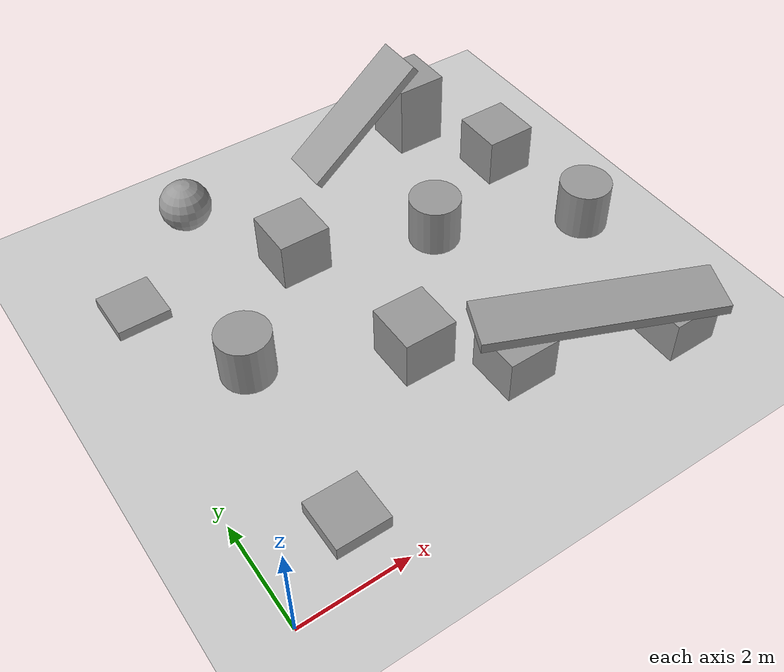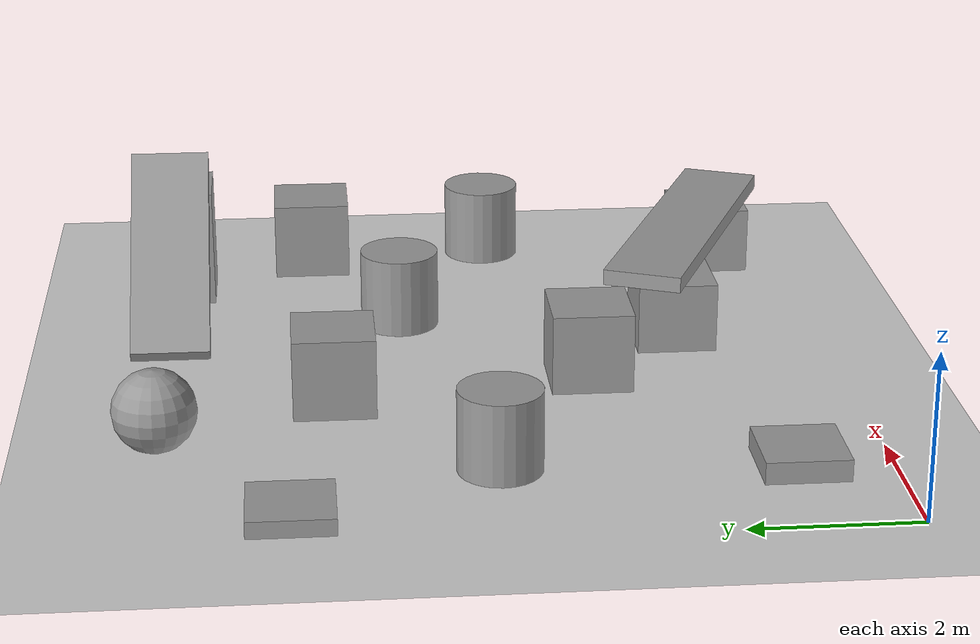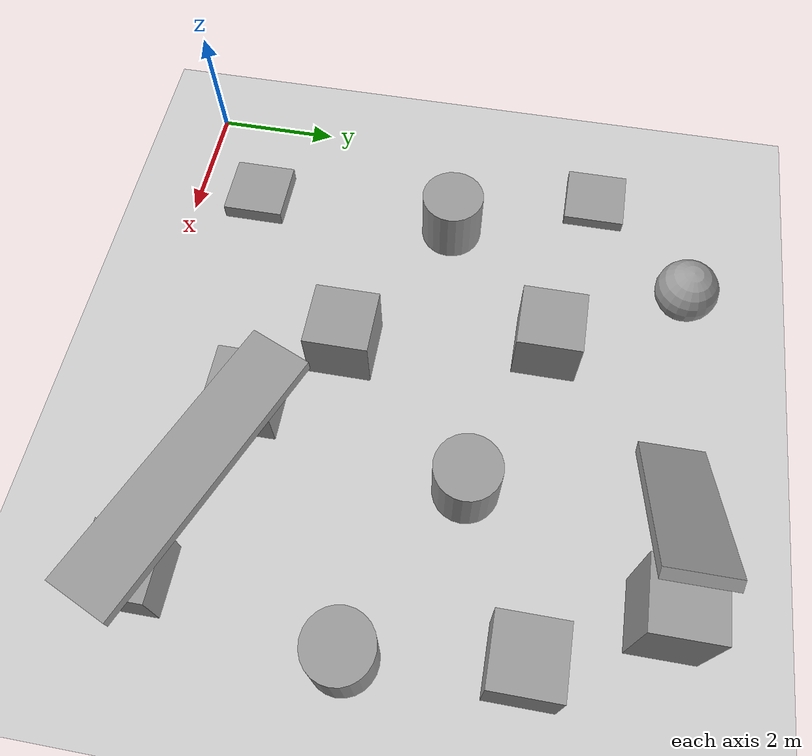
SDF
<sdf version="1.6">
 <world name="default">
  <model name="ground_plane">
   <static>1</static>
   <link name="link">
    <collision name="collision">
     <geometry><plane><normal>0 0 1</normal><size>100 100</size></plane></geometry>
     <surface><friction><ode><mu>100</mu><mu2>50</mu2></ode></friction></surface>
    </collision>
    <visual name="visual">
     <cast_shadows>0</cast_shadows>
     <geometry><plane><normal>0 0 1</normal><size>100 100</size></plane></geometry>
     <material>
      <script><uri>file://media/materials/scripts/gazebo.material</uri><name>Gazebo/Grey</name></script>
     </material>
    </visual>
   </link>
  </model>
  <light name="sun" type="directional">
   <pose>0 0 10 0 -0 0</pose>
   <diffuse>0.8 0.8 0.8 1</diffuse>
   <specular>0.1 0.1 0.1 1</specular>
   <attenuation>
    <range>1000</range>
    <constant>0.9</constant>
    <linear>0.01</linear>
    <quadratic>0.001</quadratic>
   </attenuation>
   <direction>-0.5 0.5 -1</direction>
  </light>
  <gravity>0 0 -9.8</gravity>
  <magnetic_field>6e-06 2.3e-05 -4.2e-05</magnetic_field>
  <atmosphere type="adiabatic"/>
  <physics name="default_physics" default="0" type="ode">
   <max_step_size>0.001</max_step_size>
   <real_time_factor>1</real_time_factor>
   <real_time_update_rate>1000</real_time_update_rate>
  </physics>
  <scene><ambient>0.4 0.4 0.4 1</ambient><background>0.7 0.7 0.7 1</background><shadows>1</shadows></scene>
  <spherical_coordinates>
   <surface_model>EARTH_WGS84</surface_model>
   <latitude_deg>0</latitude_deg>
   <longitude_deg>0</longitude_deg>
   <elevation>0</elevation>
   <heading_deg>0</heading_deg>
  </spherical_coordinates>
  <model name="unit_box_0">
   <pose>7.69599 8.349 0.762811 4e-06 0.006124 0.002205</pose>
   <link name="link">
    <inertial>
     <mass>1</mass>
     <inertia>
      <ixx>0.166667</ixx>
      <ixy>0</ixy>
      <ixz>0</ixz>
      <iyy>0.166667</iyy>
      <iyz>0</iyz>
      <izz>0.166667</izz>
     </inertia>
    </inertial>
    <collision name="collision"><geometry><box><size>1 1 1.51953</size></box></geometry></collision>
    <visual name="visual">
     <geometry><box><size>1 1 1.51953</size></box></geometry>
     <material>
      <script><name>Gazebo/Grey</name><uri>file://media/materials/scripts/gazebo.material</uri></script>
     </material>
    </visual>
   </link>
  </model>
  <model name="unit_box_1">
   <pose>4.27482 3.19153 0.499995 0 -1e-05 -5e-06</pose>
   <link name="link">
    <inertial>
     <mass>1</mass>
     <inertia>
      <ixx>0.166667</ixx>
      <ixy>0</ixy>
      <ixz>0</ixz>
      <iyy>0.166667</iyy>
      <iyz>0</iyz>
      <izz>0.166667</izz>
     </inertia>
    </inertial>
    <collision name="collision"><geometry><box><size>1 1 1</size></box></geometry></collision>
    <visual name="visual">
     <geometry><box><size>1 1 1</size></box></geometry>
     <material>
      <script><name>Gazebo/Grey</name><uri>file://media/materials/scripts/gazebo.material</uri></script>
     </material>
    </visual>
   </link>
  </model>
  <model name="unit_box_2">
   <pose>8.60807 6.53692 0.499995 -1e-05 -0 5e-06</pose>
   <link name="link">
    <inertial>
     <mass>1</mass>
     <inertia>
      <ixx>0.166667</ixx>
      <ixy>0</ixy>
      <ixz>0</ixz>
      <iyy>0.166667</iyy>
      <iyz>0</iyz>
      <izz>0.166667</izz>
     </inertia>
    </inertial>
    <collision name="collision"><geometry><box><size>1 1 1</size></box></geometry></collision>
    <visual name="visual">
     <geometry><box><size>1 1 1</size></box></geometry>
     <material>
      <script><name>Gazebo/Grey</name><uri>file://media/materials/scripts/gazebo.material</uri></script>
     </material>
    </visual>
   </link>
  </model>
  <model name="unit_cylinder_0">
   <pose>6.30086 5.42879 0.499994 -3e-06 -1e-06 -0</pose>
   <link name="link">
    <inertial>
     <mass>1</mass>
     <inertia><ixx>0.145833</ixx><ixy>0</ixy><ixz>0</ixz><iyy>0.145833</iyy><iyz>0</iyz><izz>0.125</izz></inertia>
    </inertial>
    <collision name="collision">
     <geometry><cylinder><radius>0.5</radius><length>1</length></cylinder></geometry>
    </collision>
    <visual name="visual">
     <geometry><cylinder><radius>0.5</radius><length>1</length></cylinder></geometry>
     <material>
      <script><name>Gazebo/Grey</name><uri>file://media/materials/scripts/gazebo.material</uri></script>
     </material>
    </visual>
   </link>
  </model>
  <model name="unit_box_3">
   <pose>8.33043 1.05611 0.433548 -2.3e-05 8.3e-05 0.002027</pose>
   <link name="link">
    <inertial>
     <mass>1</mass>
     <inertia>
      <ixx>0.166667</ixx>
      <ixy>0</ixy>
      <ixz>0</ixz>
      <iyy>0.166667</iyy>
      <iyz>0</iyz>
      <izz>0.166667</izz>
     </inertia>
    </inertial>
    <collision name="collision"><geometry><box><size>1 1 0.867207</size></box></geometry></collision>
    <visual name="visual">
     <geometry><box><size>1 1 0.867207</size></box></geometry>
     <material>
      <script><name>Gazebo/Grey</name><uri>file://media/materials/scripts/gazebo.material</uri></script>
     </material>
    </visual>
   </link>
  </model>
  <model name="unit_box_4">
   <pose>5.49667 1.96582 0.44202 1.6e-05 5.9e-05 0.00451</pose>
   <link name="link">
    <inertial>
     <mass>1</mass>
     <inertia>
      <ixx>0.166667</ixx>
      <ixy>0</ixy>
      <ixz>0</ixz>
      <iyy>0.166667</iyy>
      <iyz>0</iyz>
      <izz>0.166667</izz>
     </inertia>
    </inertial>
    <collision name="collision"><geometry><box><size>1 1 0.884126</size></box></geometry></collision>
    <visual name="visual">
     <geometry><box><size>1 1 0.884126</size></box></geometry>
     <material>
      <script><name>Gazebo/Grey</name><uri>file://media/materials/scripts/gazebo.material</uri></script>
     </material>
    </visual>
   </link>
  </model>
  <model name="unit_box_5">
   <pose>1.57172 1.08663 0.133705 0 -0 5e-06</pose>
   <link name="link">
    <inertial>
     <mass>1</mass>
     <inertia>
      <ixx>0.166667</ixx>
      <ixy>0</ixy>
      <ixz>0</ixz>
      <iyy>0.166667</iyy>
      <iyz>0</iyz>
      <izz>0.166667</izz>
     </inertia>
    </inertial>
    <collision name="collision"><geometry><box><size>1 1 0.26741</size></box></geometry></collision>
    <visual name="visual">
     <geometry><box><size>1 1 0.26741</size></box></geometry>
     <material>
      <script><name>Gazebo/Grey</name><uri>file://media/materials/scripts/gazebo.material</uri></script>
     </material>
    </visual>
   </link>
  </model>
  <model name="unit_box_6">
   <pose>6.96382 1.59859 0.977304 -0.005461 -0.002342 -1.97011</pose>
   <link name="link">
    <inertial>
     <mass>1</mass>
     <inertia>
      <ixx>0.166667</ixx>
      <ixy>0</ixy>
      <ixz>0</ixz>
      <iyy>0.166667</iyy>
      <iyz>0</iyz>
      <izz>0.166667</izz>
     </inertia>
    </inertial>
    <collision name="collision"><geometry><box><size>1 4.36041 0.198238</size></box></geometry></collision>
    <visual name="visual">
     <geometry><box><size>1 4.36041 0.198238</size></box></geometry>
     <material>
      <script><name>Gazebo/Grey</name><uri>file://media/materials/scripts/gazebo.material</uri></script>
     </material>
    </visual>
   </link>
  </model>
  <model name="unit_box_7">
   <pose>0.718594 6.89097 0.102186 0 -0 0</pose>
   <link name="link">
    <inertial>
     <mass>1</mass>
     <inertia>
      <ixx>0.166667</ixx>
      <ixy>0</ixy>
      <ixz>0</ixz>
      <iyy>0.166667</iyy>
      <iyz>0</iyz>
      <izz>0.166667</izz>
     </inertia>
    </inertial>
    <collision name="collision"><geometry><box><size>1 1 0.204372</size></box></geometry></collision>
    <visual name="visual">
     <geometry><box><size>1 1 0.204372</size></box></geometry>
     <material>
      <script><name>Gazebo/Grey</name><uri>file://media/materials/scripts/gazebo.material</uri></script>
     </material>
    </visual>
   </link>
  </model>
  <model name="unit_box_8">
   <pose>3.73945 6.34615 0.499995 1e-05 -0 -5e-06</pose>
   <link name="link">
    <inertial>
     <mass>1</mass>
     <inertia>
      <ixx>0.166667</ixx>
      <ixy>0</ixy>
      <ixz>0</ixz>
      <iyy>0.166667</iyy>
      <iyz>0</iyz>
      <izz>0.166667</izz>
     </inertia>
    </inertial>
    <collision name="collision"><geometry><box><size>1 1 1</size></box></geometry></collision>
    <visual name="visual">
     <geometry><box><size>1 1 1</size></box></geometry>
     <material>
      <script><name>Gazebo/Grey</name><uri>file://media/materials/scripts/gazebo.material</uri></script>
     </material>
    </visual>
   </link>
  </model>
  <model name="unit_box_9">
   <pose>6.3872 8.37384 1.00633 4e-06 -0.666011 0.002203</pose>
   <link name="link">
    <inertial>
     <mass>1</mass>
     <inertia>
      <ixx>0.166667</ixx>
      <ixy>0</ixy>
      <ixz>0</ixz>
      <iyy>0.166667</iyy>
      <iyz>0</iyz>
      <izz>0.166667</izz>
     </inertia>
    </inertial>
    <collision name="collision"><geometry><box><size>3.01765 1 0.188477</size></box></geometry></collision>
    <visual name="visual">
     <geometry><box><size>3.01765 1 0.188477</size></box></geometry>
     <material>
      <script><name>Gazebo/Grey</name><uri>file://media/materials/scripts/gazebo.material</uri></script>
     </material>
    </visual>
   </link>
  </model>
  <model name="unit_cylinder_1">
   <pose>1.73645 4.50908 0.499996 4e-06 3e-06 -0</pose>
   <link name="link">
    <inertial>
     <mass>1</mass>
     <inertia><ixx>0.145833</ixx><ixy>0</ixy><ixz>0</ixz><iyy>0.145833</iyy><iyz>0</iyz><izz>0.125</izz></inertia>
    </inertial>
    <collision name="collision">
     <geometry><cylinder><radius>0.5</radius><length>1</length></cylinder></geometry>
    </collision>
    <visual name="visual">
     <geometry><cylinder><radius>0.5</radius><length>1</length></cylinder></geometry>
     <material>
      <script><name>Gazebo/Grey</name><uri>file://media/materials/scripts/gazebo.material</uri></script>
     </material>
    </visual>
   </link>
  </model>
  <model name="unit_cylinder_2">
   <pose>8.9064 4.15901 0.499993 -3e-06 2e-06 0</pose>
   <link name="link">
    <inertial>
     <mass>1</mass>
     <inertia><ixx>0.145833</ixx><ixy>0</ixy><ixz>0</ixz><iyy>0.145833</iyy><iyz>0</iyz><izz>0.125</izz></inertia>
    </inertial>
    <collision name="collision">
     <geometry><cylinder><radius>0.5</radius><length>1</length></cylinder></geometry>
    </collision>
    <visual name="visual">
     <geometry><cylinder><radius>0.5</radius><length>1</length></cylinder></geometry>
     <material>
      <script><name>Gazebo/Grey</name><uri>file://media/materials/scripts/gazebo.material</uri></script>
     </material>
    </visual>
   </link>
  </model>
  <model name="unit_sphere_0">
   <pose>2.57234 8.43226 0.5 0 -0 0</pose>
   <link name="link">
    <inertial>
     <mass>1</mass>
     <inertia><ixx>0.1</ixx><ixy>0</ixy><ixz>0</ixz><iyy>0.1</iyy><iyz>0</iyz><izz>0.1</izz></inertia>
    </inertial>
    <collision name="collision"><geometry><sphere><radius>0.5</radius></sphere></geometry></collision>
    <visual name="visual">
     <geometry><sphere><radius>0.5</radius></sphere></geometry>
     <material>
      <script><name>Gazebo/Grey</name><uri>file://media/materials/scripts/gazebo.material</uri></script>
     </material>
    </visual>
   </link>
  </model>
 </world>
</sdf>
